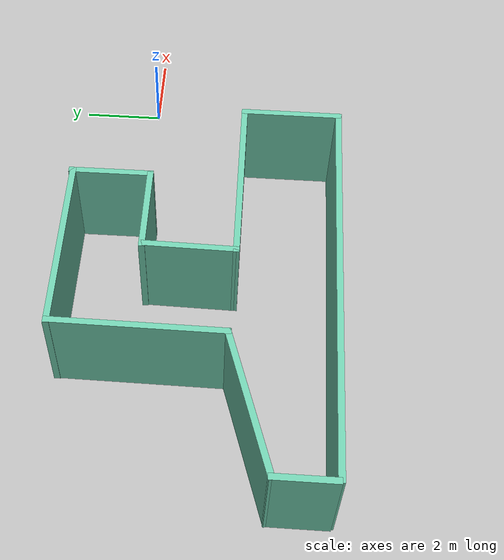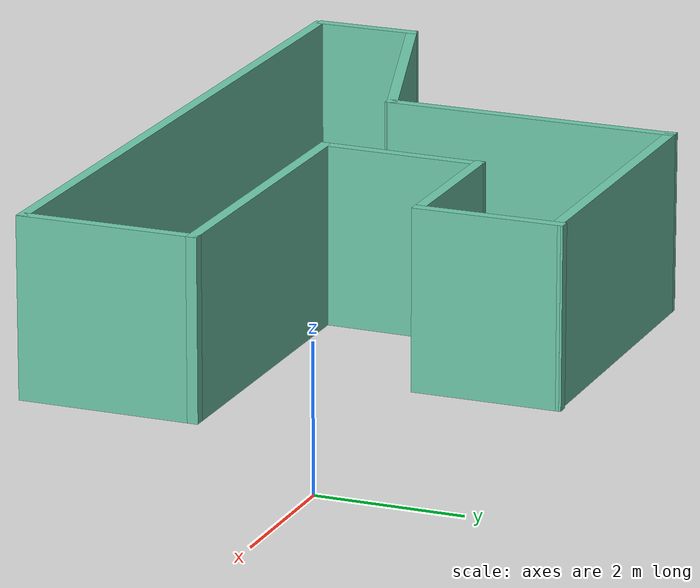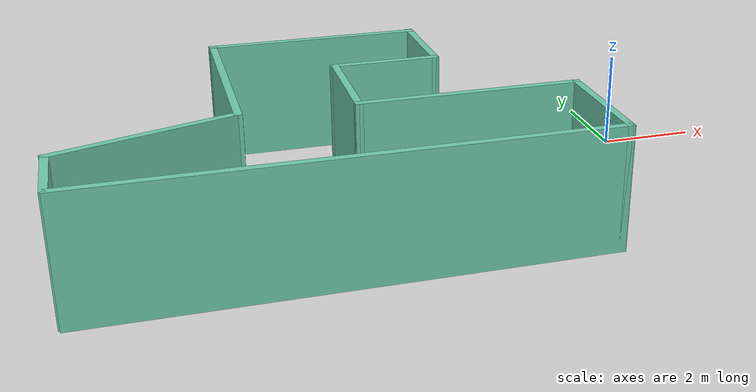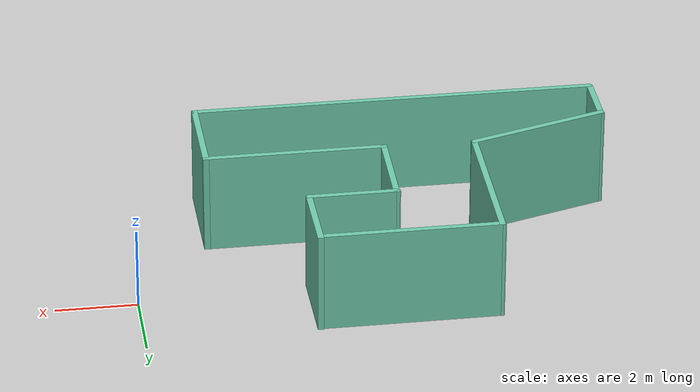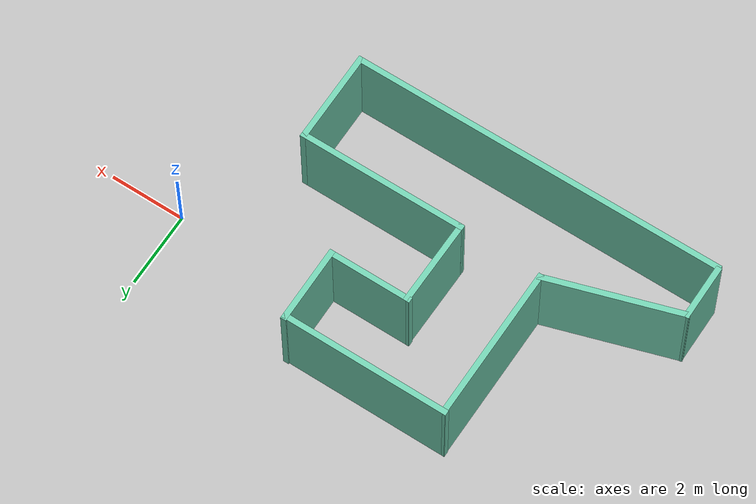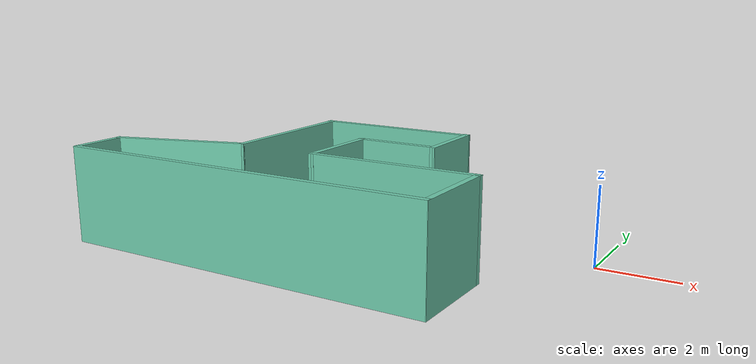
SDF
<?xml version='1.0'?>
<sdf version='1.6'>
  <model name='world_final'>
    <pose frame=''>-6.89869 -1.5816 0 0 -0 0</pose>
    <link name='Wall_0'>
      <collision name='Wall_0_Collision'>
        <geometry>
          <box>
            <size>10 0.15 2.5</size>
          </box>
        </geometry>
        <pose frame=''>0 0 1.25 0 -0 0</pose>
      </collision>
      <visual name='Wall_0_Visual'>
        <pose frame=''>0 0 1.25 0 -0 0</pose>
        <geometry>
          <box>
            <size>10 0.15 2.5</size>
          </box>
        </geometry>
        <material>
          <script>
            <uri>file://media/materials/scripts/gazebo.material</uri>
            <name>Gazebo/Grey</name>
          </script>
          <ambient>0.435294 0.796078 0.67451 1</ambient>
        </material>
        <meta>
          <layer>0</layer>
        </meta>
      </visual>
      <pose frame=''>0.018372 -3.24484 0 0 -0 0</pose>
    </link>
    <link name='Wall_1'>
      <collision name='Wall_1_Collision'>
        <geometry>
          <box>
            <size>2.52362 0.15 2.5</size>
          </box>
        </geometry>
        <pose frame=''>0 0 1.25 0 -0 0</pose>
      </collision>
      <visual name='Wall_1_Visual'>
        <pose frame=''>0 0 1.25 0 -0 0</pose>
        <geometry>
          <box>
            <size>2.52362 0.15 2.5</size>
          </box>
        </geometry>
        <material>
          <script>
            <uri>file://media/materials/scripts/gazebo.material</uri>
            <name>Gazebo/Grey</name>
          </script>
          <ambient>0.435294 0.796078 0.67451 1</ambient>
        </material>
        <meta>
          <layer>0</layer>
        </meta>
      </visual>
      <pose frame=''>4.95792 -2.05803 0 0 -0 1.5708</pose>
    </link>
    <link name='Wall_2'>
      <collision name='Wall_2_Collision'>
        <geometry>
          <box>
            <size>4.5 0.15 2.5</size>
          </box>
        </geometry>
        <pose frame=''>0 0 1.25 0 -0 0</pose>
      </collision>
      <visual name='Wall_2_Visual'>
        <pose frame=''>0 0 1.25 0 -0 0</pose>
        <geometry>
          <box>
            <size>4.5 0.15 2.5</size>
          </box>
        </geometry>
        <material>
          <script>
            <uri>file://media/materials/scripts/gazebo.material</uri>
            <name>Gazebo/Grey</name>
          </script>
          <ambient>0.435294 0.796078 0.67451 1</ambient>
        </material>
        <meta>
          <layer>0</layer>
        </meta>
      </visual>
      <pose frame=''>2.78292 -0.871222 0 0 -0 3.14159</pose>
    </link>
    <link name='Wall_3'>
      <collision name='Wall_3_Collision'>
        <geometry>
          <box>
            <size>2.34625 0.15 2.5</size>
          </box>
        </geometry>
        <pose frame=''>0 0 1.25 0 -0 0</pose>
      </collision>
      <visual name='Wall_3_Visual'>
        <pose frame=''>0 0 1.25 0 -0 0</pose>
        <geometry>
          <box>
            <size>2.34625 0.15 2.5</size>
          </box>
        </geometry>
        <material>
          <script>
            <uri>file://media/materials/scripts/gazebo.material</uri>
            <name>Gazebo/Grey</name>
          </script>
          <ambient>0.435294 0.796078 0.67451 1</ambient>
        </material>
        <meta>
          <layer>0</layer>
        </meta>
      </visual>
      <pose frame=''>0.626475 0.226747 0 0 -0 1.5539</pose>
    </link>
    <link name='Wall_4'>
      <collision name='Wall_4_Collision'>
        <geometry>
          <box>
            <size>2.25 0.15 2.5</size>
          </box>
        </geometry>
        <pose frame=''>0 0 1.25 0 -0 0</pose>
      </collision>
      <visual name='Wall_4_Visual'>
        <pose frame=''>0 0 1.25 0 -0 0</pose>
        <geometry>
          <box>
            <size>2.25 0.15 2.5</size>
          </box>
        </geometry>
        <material>
          <script>
            <uri>file://media/materials/scripts/gazebo.material</uri>
            <name>Gazebo/Grey</name>
          </script>
          <ambient>0.435294 0.796078 0.67451 1</ambient>
        </material>
        <meta>
          <layer>0</layer>
        </meta>
      </visual>
      <pose frame=''>1.67316 1.32472 0 0 -0 0</pose>
    </link>
    <link name='Wall_5'>
      <collision name='Wall_5_Collision'>
        <geometry>
          <box>
            <size>2.06986 0.15 2.5</size>
          </box>
        </geometry>
        <pose frame=''>0 0 1.25 0 -0 0</pose>
      </collision>
      <visual name='Wall_5_Visual'>
        <pose frame=''>0 0 1.25 0 -0 0</pose>
        <geometry>
          <box>
            <size>2.06986 0.15 2.5</size>
          </box>
        </geometry>
        <material>
          <script>
            <uri>file://media/materials/scripts/gazebo.material</uri>
            <name>Gazebo/Grey</name>
          </script>
          <ambient>0.435294 0.796078 0.67451 1</ambient>
        </material>
        <meta>
          <layer>0</layer>
        </meta>
      </visual>
      <pose frame=''>2.74122 2.28462 0 0 -0 1.57477</pose>
    </link>
    <link name='Wall_6'>
      <collision name='Wall_6_Collision'>
        <geometry>
          <box>
            <size>4.47998 0.15 2.5</size>
          </box>
        </geometry>
        <pose frame=''>0 0 1.25 0 -0 0</pose>
      </collision>
      <visual name='Wall_6_Visual'>
        <pose frame=''>0 0 1.25 0 -0 0</pose>
        <geometry>
          <box>
            <size>4.47998 0.15 2.5</size>
          </box>
        </geometry>
        <material>
          <script>
            <uri>file://media/materials/scripts/gazebo.material</uri>
            <name>Gazebo/Grey</name>
          </script>
          <ambient>0.435294 0.796078 0.67451 1</ambient>
        </material>
        <meta>
          <layer>0</layer>
        </meta>
      </visual>
      <pose frame=''>0.57242 3.21523 0 0 -0 3.1415</pose>
    </link>
    <link name='Wall_7'>
      <collision name='Wall_7_Collision'>
        <geometry>
          <box>
            <size>4.16585 0.15 2.5</size>
          </box>
        </geometry>
        <pose frame=''>0 0 1.25 0 -0 0</pose>
      </collision>
      <visual name='Wall_7_Visual'>
        <pose frame=''>0 0 1.25 0 -0 0</pose>
        <geometry>
          <box>
            <size>4.16585 0.15 2.5</size>
          </box>
        </geometry>
        <material>
          <script>
            <uri>file://media/materials/scripts/gazebo.material</uri>
            <name>Gazebo/Grey</name>
          </script>
          <ambient>0.435294 0.796078 0.67451 1</ambient>
        </material>
        <meta>
          <layer>0</layer>
        </meta>
      </visual>
      <pose frame=''>-1.59277 1.20756 0 0 0 -1.57814</pose>
    </link>
    <link name='Wall_8'>
      <collision name='Wall_8_Collision'>
        <geometry>
          <box>
            <size>3.62578 0.15 2.5</size>
          </box>
        </geometry>
        <pose frame=''>0 0 1.25 0 -0 0</pose>
      </collision>
      <visual name='Wall_8_Visual'>
        <pose frame=''>0 0 1.25 0 -0 0</pose>
        <geometry>
          <box>
            <size>3.62578 0.15 2.5</size>
          </box>
        </geometry>
        <material>
          <script>
            <uri>file://media/materials/scripts/gazebo.material</uri>
            <name>Gazebo/Grey</name>
          </script>
          <ambient>0.435294 0.796078 0.67451 1</ambient>
        </material>
        <meta>
          <layer>0</layer>
        </meta>
      </visual>
      <pose frame=''>-3.2805 -1.3198 0 0 0 -2.83803</pose>
    </link>
    <link name='Wall_9'>
      <collision name='Wall_9_Collision'>
        <geometry>
          <box>
            <size>1.5 0.15 2.5</size>
          </box>
        </geometry>
        <pose frame=''>0 0 1.25 0 -0 0</pose>
      </collision>
      <visual name='Wall_9_Visual'>
        <pose frame=''>0 0 1.25 0 -0 0</pose>
        <geometry>
          <box>
            <size>1.5 0.15 2.5</size>
          </box>
        </geometry>
        <material>
          <script>
            <uri>file://media/materials/scripts/gazebo.material</uri>
            <name>Gazebo/Grey</name>
          </script>
          <ambient>0.435294 0.796078 0.67451 1</ambient>
        </material>
        <meta>
          <layer>0</layer>
        </meta>
      </visual>
      <pose frame=''>-4.93893 -2.51428 0 0 0 -1.5708</pose>
    </link>
    <static>1</static>
  </model>
</sdf>
